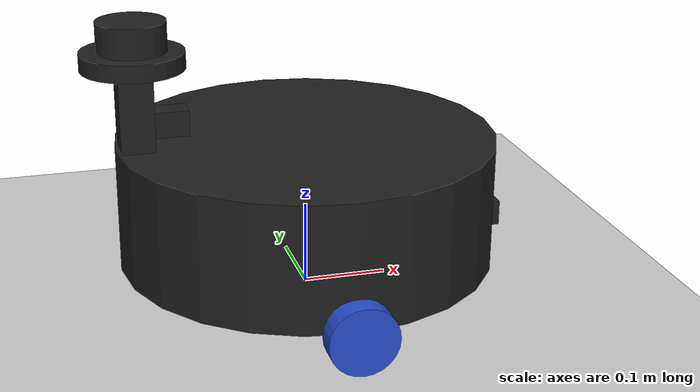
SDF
<sdf version="1.7">
 <world name="default">
  <light name="sun" type="directional">
   <pose>0 0 10 0 -0 0</pose>
   <diffuse>0.8 0.8 0.8 1</diffuse>
   <specular>0.2 0.2 0.2 1</specular>
   <attenuation>
    <range>1000</range>
    <constant>0.9</constant>
    <linear>0.01</linear>
    <quadratic>0.001</quadratic>
   </attenuation>
   <direction>-0.5 0.1 -0.9</direction>
   <spot><inner_angle>0</inner_angle><outer_angle>0</outer_angle><falloff>0</falloff></spot>
  </light>
  <model name="ground_plane">
   <static>1</static>
   <link name="link">
    <collision name="collision">
     <geometry><plane><normal>0 0 1</normal><size>100 100</size></plane></geometry>
     <surface>
      <contact><collide_bitmask>65535</collide_bitmask></contact>
      <friction><ode><mu>100</mu><mu2>50</mu2></ode></friction>
     </surface>
    </collision>
    <visual name="visual">
     <cast_shadows>0</cast_shadows>
     <geometry><plane><normal>0 0 1</normal><size>100 100</size></plane></geometry>
     <material>
      <script><uri>file://media/materials/scripts/gazebo.material</uri><name>Gazebo/Grey</name></script>
     </material>
    </visual>
   </link>
  </model>
  <gravity>0 0 -9.8</gravity>
  <magnetic_field>6e-06 2.3e-05 -4.2e-05</magnetic_field>
  <atmosphere type="adiabatic"/>
  <physics type="ode">
   <max_step_size>0.001</max_step_size>
   <real_time_factor>1</real_time_factor>
   <real_time_update_rate>1000</real_time_update_rate>
  </physics>
  <scene><ambient>0.4 0.4 0.4 1</ambient><background>0.7 0.7 0.7 1</background><shadows>1</shadows></scene>
  <audio><device>default</device></audio>
  <spherical_coordinates>
   <surface_model>EARTH_WGS84</surface_model>
   <latitude_deg>0</latitude_deg>
   <longitude_deg>0</longitude_deg>
   <elevation>0</elevation>
   <heading_deg>0</heading_deg>
  </spherical_coordinates>
  <model name="ros_bot">
   <link name="base_link">
    <inertial>
     <pose>-0.009091 0 0.120227 0 -0 0</pose>
     <mass>2.2</mass>
     <inertia>
      <ixx>0.0341157</ixx>
      <ixy>0</ixy>
      <ixz>0.00399545</ixz>
      <iyy>0.0411739</iyy>
      <iyz>0</iyz>
      <izz>0.0578332</izz>
     </inertia>
    </inertial>
    <collision name="base_link_fixed_joint_lump__chassis_collision">
     <pose>0 0 0.115 0 -0 0</pose>
     <geometry><cylinder><length>0.15</length><radius>0.225</radius></cylinder></geometry>
    </collision>
    <collision name="base_link_fixed_joint_lump__front_caster_wheel_collision_1">
     <pose>0.18 0 0.025 0 -0 0</pose>
     <geometry><sphere><radius>0.025</radius></sphere></geometry>
     <surface><friction><ode><mu>0.001</mu><mu2>0.001</mu2></ode></friction></surface>
    </collision>
    <collision name="base_link_fixed_joint_lump__laser_frame_collision_2">
     <pose>-0.2 0 0.32 0 -0 0</pose>
     <geometry><cylinder><length>0.04</length><radius>0.04</radius></cylinder></geometry>
    </collision>
    <collision name="base_link_fixed_joint_lump__rear_caster_wheel_collision_3">
     <pose>-0.18 0 0.025 0 -0 0</pose>
     <geometry><sphere><radius>0.025</radius></sphere></geometry>
     <surface><friction><ode><mu>0.001</mu><mu2>0.001</mu2></ode></friction></surface>
    </collision>
    <visual name="base_link_fixed_joint_lump__chassis_visual">
     <pose>0 0 0.115 0 -0 0</pose>
     <geometry><cylinder><length>0.15</length><radius>0.225</radius></cylinder></geometry>
     <material>
      <script><name>Gazebo/Black</name><uri>file://media/materials/scripts/gazebo.material</uri></script>
     </material>
    </visual>
    <visual name="base_link_fixed_joint_lump__camera_link_visual_1">
     <pose>0.225 0 0.08 0 -0 0</pose>
     <geometry><box><size>0.02 0.08 0.03</size></box></geometry>
     <material>
      <script><name>Gazebo/Black</name><uri>file://media/materials/scripts/gazebo.material</uri></script>
     </material>
    </visual>
    <visual name="base_link_fixed_joint_lump__camera_link_visual_2">
     <pose>0.235 0 0.08 0 -0 0</pose>
     <geometry><cylinder><length>0.01</length><radius>0.01</radius></cylinder></geometry>
     <material>
      <script><name>Gazebo/Black</name><uri>file://media/materials/scripts/gazebo.material</uri></script>
     </material>
    </visual>
    <visual name="base_link_fixed_joint_lump__front_caster_wheel_visual_3">
     <pose>0.18 0 0.035 0 -0 0</pose>
     <geometry><cylinder><length>0.04</length><radius>0.02</radius></cylinder></geometry>
     <material>
      <script><name>Gazebo/White</name><uri>file://media/materials/scripts/gazebo.material</uri></script>
     </material>
    </visual>
    <visual name="base_link_fixed_joint_lump__front_caster_wheel_visual_4">
     <pose>0.18 0 0.025 1.5708 -0 0</pose>
     <geometry><cylinder><length>0.015</length><radius>0.025</radius></cylinder></geometry>
     <material>
      <script><name>Gazebo/White</name><uri>file://media/materials/scripts/gazebo.material</uri></script>
     </material>
    </visual>
    <visual name="base_link_fixed_joint_lump__laser_frame_visual_5">
     <pose>-0.2 0 0.32 0 -0 0</pose>
     <geometry><cylinder><length>0.04</length><radius>0.04</radius></cylinder></geometry>
     <material>
      <script><name>Gazebo/Black</name><uri>file://media/materials/scripts/gazebo.material</uri></script>
     </material>
    </visual>
    <visual name="base_link_fixed_joint_lump__laser_frame_visual_6">
     <pose>-0.2 0 0.295 0 -0 0</pose>
     <geometry><cylinder><length>0.02</length><radius>0.06</radius></cylinder></geometry>
     <material>
      <script><name>Gazebo/Black</name><uri>file://media/materials/scripts/gazebo.material</uri></script>
     </material>
    </visual>
    <visual name="base_link_fixed_joint_lump__laser_frame_visual_7">
     <pose>-0.2 0 0.18 0 -0 0</pose>
     <geometry><box><size>0.04 0.04 0.25</size></box></geometry>
     <material>
      <script><name>Gazebo/Black</name><uri>file://media/materials/scripts/gazebo.material</uri></script>
     </material>
    </visual>
    <visual name="base_link_fixed_joint_lump__laser_frame_visual_8">
     <pose>-0.16 0 0.22 0 -0 0</pose>
     <geometry><box><size>0.04 0.03 0.03</size></box></geometry>
     <material>
      <script><name>Gazebo/Black</name><uri>file://media/materials/scripts/gazebo.material</uri></script>
     </material>
    </visual>
    <visual name="base_link_fixed_joint_lump__rear_caster_wheel_visual_9">
     <pose>-0.18 0 0.035 0 -0 0</pose>
     <geometry><cylinder><length>0.04</length><radius>0.02</radius></cylinder></geometry>
     <material>
      <script><name>Gazebo/White</name><uri>file://media/materials/scripts/gazebo.material</uri></script>
     </material>
    </visual>
    <visual name="base_link_fixed_joint_lump__rear_caster_wheel_visual_10">
     <pose>-0.18 0 0.025 1.5708 -0 0</pose>
     <geometry><cylinder><length>0.015</length><radius>0.025</radius></cylinder></geometry>
     <material>
      <script><name>Gazebo/White</name><uri>file://media/materials/scripts/gazebo.material</uri></script>
     </material>
    </visual>
    <sensor name="camera" type="camera">
     <visualize>1</visualize>
     <update_rate>10</update_rate>
     <camera>
      <horizontal_fov>1.089</horizontal_fov>
      <image><format>R8G8B8</format><width>640</width><height>480</height></image>
      <clip><near>0.05</near><far>8</far></clip>
     </camera>
     <plugin name="camera_controller" filename="libgazebo_ros_camera.so">
      <frame_name>camera_link_optical</frame_name>
     </plugin>
     <pose>0.225 0 0.08 0 -0 0</pose>
    </sensor>
    <sensor name="laser" type="ray">
     <visualize>0</visualize>
     <update_rate>10</update_rate>
     <ray>
      <scan>
       <horizontal>
        <samples>360</samples>
        <min_angle>-3.14</min_angle>
        <max_angle>3.14</max_angle>
        <resolution>1</resolution>
       </horizontal>
       <vertical><samples>1</samples><min_angle>0</min_angle><max_angle>0</max_angle></vertical>
      </scan>
      <range><min>0.3</min><max>12</max></range>
     </ray>
     <plugin name="laser_controller" filename="libgazebo_ros_ray_sensor.so">
      <ros><argument>~/out:=scan</argument></ros>
      <output_type>sensor_msgs/LaserScan</output_type>
      <frame_name>laser_frame</frame_name>
     </plugin>
     <pose>-0.2 0 0.32 0 -0 0</pose>
    </sensor>
   </link>
   <joint name="left_wheel_joint" type="revolute">
    <pose relative_to="base_link">0 0.235 0.04 -1.5708 0 0</pose>
    <parent>base_link</parent>
    <child>left_wheel</child>
    <axis>
     <xyz>0 0 1</xyz>
     <limit><lower>-1e+16</lower><upper>1e+16</upper></limit>
     <dynamics><spring_reference>0</spring_reference><spring_stiffness>0</spring_stiffness></dynamics>
    </axis>
   </joint>
   <link name="left_wheel">
    <pose relative_to="left_wheel_joint">0 0 0 0 -0 0</pose>
    <inertial>
     <mass>0.2</mass>
     <inertia>
      <ixx>9.12667e-05</ixx>
      <ixy>0</ixy>
      <ixz>0</ixz>
      <iyy>9.12667e-05</iyy>
      <iyz>0</iyz>
      <izz>0.00016</izz>
     </inertia>
    </inertial>
    <collision name="left_wheel_collision"><geometry><sphere><radius>0.04</radius></sphere></geometry></collision>
    <visual name="left_wheel_visual">
     <geometry><cylinder><length>0.026</length><radius>0.04</radius></cylinder></geometry>
     <material>
      <script><name>Gazebo/Blue</name><uri>file://media/materials/scripts/gazebo.material</uri></script>
     </material>
    </visual>
   </link>
   <joint name="right_wheel_joint" type="revolute">
    <pose relative_to="base_link">0 -0.235 0.04 1.5708 -0 0</pose>
    <parent>base_link</parent>
    <child>right_wheel</child>
    <axis>
     <xyz>0 0 -1</xyz>
     <limit><lower>-1e+16</lower><upper>1e+16</upper></limit>
     <dynamics><spring_reference>0</spring_reference><spring_stiffness>0</spring_stiffness></dynamics>
    </axis>
   </joint>
   <link name="right_wheel">
    <pose relative_to="right_wheel_joint">0 0 0 0 -0 0</pose>
    <inertial>
     <mass>0.2</mass>
     <inertia>
      <ixx>9.12667e-05</ixx>
      <ixy>0</ixy>
      <ixz>0</ixz>
      <iyy>9.12667e-05</iyy>
      <iyz>0</iyz>
      <izz>0.00016</izz>
     </inertia>
    </inertial>
    <collision name="right_wheel_collision">
     <geometry><sphere><radius>0.04</radius></sphere></geometry>
    </collision>
    <visual name="right_wheel_visual">
     <geometry><cylinder><length>0.026</length><radius>0.04</radius></cylinder></geometry>
     <material>
      <script><name>Gazebo/Blue</name><uri>file://media/materials/scripts/gazebo.material</uri></script>
     </material>
    </visual>
   </link>
   <static>0</static>
   <plugin name="gazebo_ros2_control" filename="libgazebo_ros2_control.so">
    <parameters>/home/harishankar/rosBot/install/ros_bot/share/ros_bot/config/my_controllers.yaml</parameters>
    <parameters>/home/harishankar/rosBot/install/ros_bot/share/ros_bot/config/gazebo_params.yaml</parameters>
   </plugin>
  </model>
 </world>
</sdf>
